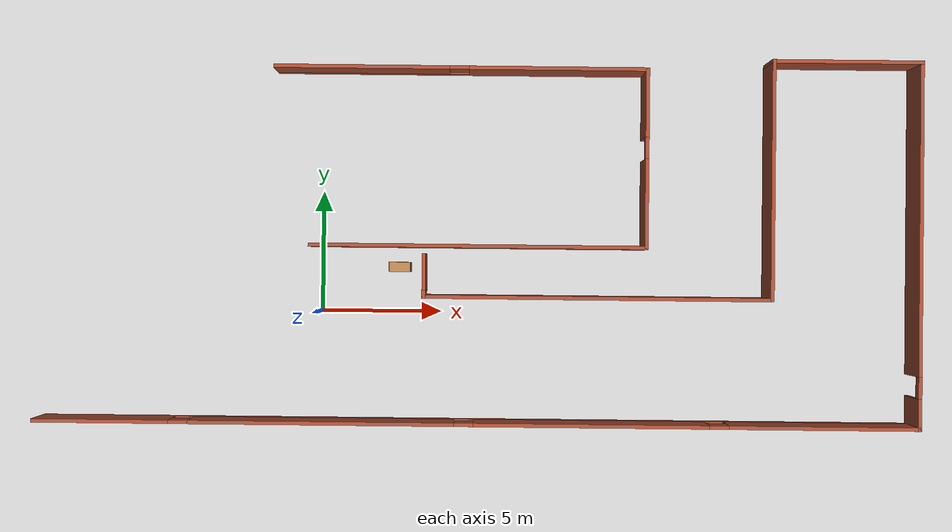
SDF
<sdf version="1.6">
 <world name="default">
  <model name="ground_plane">
   <static>1</static>
   <link name="link">
    <collision name="collision">
     <geometry><plane><normal>0 0 1</normal><size>100 100</size></plane></geometry>
     <surface><friction><ode><mu>100</mu><mu2>50</mu2></ode></friction></surface>
    </collision>
    <visual name="visual">
     <cast_shadows>0</cast_shadows>
     <geometry><plane><normal>0 0 1</normal><size>100 100</size></plane></geometry>
     <material>
      <script><uri>file://media/materials/scripts/gazebo.material</uri><name>Gazebo/Grey</name></script>
     </material>
    </visual>
   </link>
  </model>
  <model name="bookshelf">
   <static>1</static>
   <link name="link">
    <inertial><mass>1</mass></inertial>
    <collision name="back">
     <pose>0 0.005 0.6 0 -0 0</pose>
     <geometry><box><size>0.9 0.01 1.2</size></box></geometry>
    </collision>
    <visual name="visual1">
     <pose>0 0.005 0.6 0 -0 0</pose>
     <geometry><box><size>0.9 0.01 1.2</size></box></geometry>
     <material>
      <script><uri>file://media/materials/scripts/gazebo.material</uri><name>Gazebo/Wood</name></script>
     </material>
    </visual>
    <collision name="left_side">
     <pose>0.45 -0.195 0.6 0 -0 0</pose>
     <geometry><box><size>0.02 0.4 1.2</size></box></geometry>
    </collision>
    <visual name="visual2">
     <pose>0.45 -0.195 0.6 0 -0 0</pose>
     <geometry><box><size>0.02 0.4 1.2</size></box></geometry>
     <material>
      <script><uri>file://media/materials/scripts/gazebo.material</uri><name>Gazebo/Wood</name></script>
     </material>
    </visual>
    <collision name="right_side">
     <pose>-0.45 -0.195 0.6 0 -0 0</pose>
     <geometry><box><size>0.02 0.4 1.2</size></box></geometry>
    </collision>
    <visual name="visual3">
     <pose>-0.45 -0.195 0.6 0 -0 0</pose>
     <geometry><box><size>0.02 0.4 1.2</size></box></geometry>
     <material>
      <script><uri>file://media/materials/scripts/gazebo.material</uri><name>Gazebo/Wood</name></script>
     </material>
    </visual>
    <collision name="bottom">
     <pose>0 -0.195 0.03 0 -0 0</pose>
     <geometry><box><size>0.88 0.4 0.06</size></box></geometry>
    </collision>
    <visual name="visual4">
     <pose>0 -0.195 0.03 0 -0 0</pose>
     <geometry><box><size>0.88 0.4 0.06</size></box></geometry>
     <material>
      <script><uri>file://media/materials/scripts/gazebo.material</uri><name>Gazebo/Wood</name></script>
     </material>
    </visual>
    <collision name="top">
     <pose>0 -0.195 1.19 0 -0 0</pose>
     <geometry><box><size>0.88 0.4 0.02</size></box></geometry>
    </collision>
    <visual name="visual5">
     <pose>0 -0.195 1.19 0 -0 0</pose>
     <geometry><box><size>0.88 0.4 0.02</size></box></geometry>
     <material>
      <script><uri>file://media/materials/scripts/gazebo.material</uri><name>Gazebo/Wood</name></script>
     </material>
    </visual>
    <collision name="low_shelf">
     <pose>0 -0.195 0.43 0 -0 0</pose>
     <geometry><box><size>0.88 0.4 0.02</size></box></geometry>
    </collision>
    <visual name="visual6">
     <pose>0 -0.195 0.43 0 -0 0</pose>
     <geometry><box><size>0.88 0.4 0.02</size></box></geometry>
     <material>
      <script><uri>file://media/materials/scripts/gazebo.material</uri><name>Gazebo/Wood</name></script>
     </material>
    </visual>
    <collision name="high_shelf">
     <pose>0 -0.195 0.8 0 -0 0</pose>
     <geometry><box><size>0.88 0.4 0.02</size></box></geometry>
    </collision>
    <visual name="visual7">
     <pose>0 -0.195 0.8 0 -0 0</pose>
     <geometry><box><size>0.88 0.4 0.02</size></box></geometry>
     <material>
      <script><uri>file://media/materials/scripts/gazebo.material</uri><name>Gazebo/Wood</name></script>
     </material>
    </visual>
   </link>
   <pose>3.27707 2.05989 0 0 -0 0</pose>
  </model>
  <model name="apartment_model">
   <link name="Wall_15">
    <pose>0 -0.2 0 0 -0 0</pose>
    <visual name="Wall_15_Visual">
     <pose>0 0 1.25 0 -0 0</pose>
     <geometry><box><size>14 0.15 2.5</size></box></geometry>
     <material>
      <script><uri>file://media/materials/scripts/gazebo.material</uri><name>Gazebo/Bricks</name></script>
      <ambient>1 1 1 1</ambient>
      <diffuse>1 1 1 1</diffuse>
      <specular>0.2 0.2 0.2 1</specular>
      <emissive>0 0 0 1</emissive>
     </material>
    </visual>
    <collision name="Wall_15_Collision">
     <pose>0 0 1.25 0 -0 0</pose>
     <geometry><box><size>14 0.15 2.5</size></box></geometry>
     <surface>
      <friction>
       <ode><mu>1</mu><mu2>1</mu2><fdir1>0 0 0</fdir1><slip1>0</slip1><slip2>0</slip2></ode>
       <torsional>
        <coefficient>1</coefficient>
        <patch_radius>0</patch_radius>
        <surface_radius>0</surface_radius>
        <use_patch_radius>1</use_patch_radius>
        <ode><slip>0</slip></ode>
       </torsional>
      </friction>
      <bounce><restitution_coefficient>0</restitution_coefficient><threshold>1e+06</threshold></bounce>
      <contact>
       <collide_without_contact>0</collide_without_contact>
       <collide_without_contact_bitmask>1</collide_without_contact_bitmask>
       <collide_bitmask>1</collide_bitmask>
       <ode>
        <soft_cfm>0</soft_cfm>
        <soft_erp>0.2</soft_erp>
        <kp>1e+13</kp>
        <kd>1</kd>
        <max_vel>0.01</max_vel>
        <min_depth>0</min_depth>
       </ode>
       <bullet>
        <split_impulse>1</split_impulse>
        <split_impulse_penetration_threshold>-0.01</split_impulse_penetration_threshold>
        <soft_cfm>0</soft_cfm>
        <soft_erp>0.2</soft_erp>
        <kp>1e+13</kp>
        <kd>1</kd>
       </bullet>
      </contact>
     </surface>
    </collision>
   </link>
   <link name="Wall_16">
    <pose>6.925 3.475 0 0 -0 1.5708</pose>
    <visual name="Wall_16_Visual_0">
     <pose>-1.87856 0 1.25 0 -0 0</pose>
     <geometry><box><size>3.74288 0.15 2.5</size></box></geometry>
     <material>
      <script><uri>file://media/materials/scripts/gazebo.material</uri><name>Gazebo/Bricks</name></script>
      <ambient>1 1 1 1</ambient>
      <diffuse>1 1 1 1</diffuse>
      <specular>0.2 0.2 0.2 1</specular>
      <emissive>0 0 0 1</emissive>
     </material>
    </visual>
    <visual name="Wall_16_Visual_1">
     <pose>2.32144 0 1.25 0 -0 0</pose>
     <geometry><box><size>2.85712 0.15 2.5</size></box></geometry>
     <material>
      <script><uri>file://media/materials/scripts/gazebo.material</uri><name>Gazebo/Bricks</name></script>
      <ambient>1 1 1 1</ambient>
      <diffuse>1 1 1 1</diffuse>
      <specular>0.2 0.2 0.2 1</specular>
      <emissive>0 0 0 1</emissive>
     </material>
    </visual>
    <visual name="Wall_16_Visual_2">
     <pose>0.442879 0 2.25 0 -0 0</pose>
     <geometry><box><size>0.9 0.15 0.5</size></box></geometry>
     <material>
      <script><uri>file://media/materials/scripts/gazebo.material</uri><name>Gazebo/Bricks</name></script>
      <ambient>1 1 1 1</ambient>
      <diffuse>1 1 1 1</diffuse>
      <specular>0.2 0.2 0.2 1</specular>
      <emissive>0 0 0 1</emissive>
     </material>
    </visual>
    <collision name="Wall_16_Collision_0">
     <pose>-1.87856 0 1.25 0 -0 0</pose>
     <geometry><box><size>3.74288 0.15 2.5</size></box></geometry>
     <surface>
      <friction>
       <ode><mu>1</mu><mu2>1</mu2><fdir1>0 0 0</fdir1><slip1>0</slip1><slip2>0</slip2></ode>
       <torsional>
        <coefficient>1</coefficient>
        <patch_radius>0</patch_radius>
        <surface_radius>0</surface_radius>
        <use_patch_radius>1</use_patch_radius>
        <ode><slip>0</slip></ode>
       </torsional>
      </friction>
      <bounce><restitution_coefficient>0</restitution_coefficient><threshold>1e+06</threshold></bounce>
      <contact>
       <collide_without_contact>0</collide_without_contact>
       <collide_without_contact_bitmask>1</collide_without_contact_bitmask>
       <collide_bitmask>1</collide_bitmask>
       <ode>
        <soft_cfm>0</soft_cfm>
        <soft_erp>0.2</soft_erp>
        <kp>1e+13</kp>
        <kd>1</kd>
        <max_vel>0.01</max_vel>
        <min_depth>0</min_depth>
       </ode>
       <bullet>
        <split_impulse>1</split_impulse>
        <split_impulse_penetration_threshold>-0.01</split_impulse_penetration_threshold>
        <soft_cfm>0</soft_cfm>
        <soft_erp>0.2</soft_erp>
        <kp>1e+13</kp>
        <kd>1</kd>
       </bullet>
      </contact>
     </surface>
    </collision>
    <collision name="Wall_16_Collision_1">
     <pose>2.32144 0 1.25 0 -0 0</pose>
     <geometry><box><size>2.85712 0.15 2.5</size></box></geometry>
     <surface>
      <friction>
       <ode><mu>1</mu><mu2>1</mu2><fdir1>0 0 0</fdir1><slip1>0</slip1><slip2>0</slip2></ode>
       <torsional>
        <coefficient>1</coefficient>
        <patch_radius>0</patch_radius>
        <surface_radius>0</surface_radius>
        <use_patch_radius>1</use_patch_radius>
        <ode><slip>0</slip></ode>
       </torsional>
      </friction>
      <bounce><restitution_coefficient>0</restitution_coefficient><threshold>1e+06</threshold></bounce>
      <contact>
       <collide_without_contact>0</collide_without_contact>
       <collide_without_contact_bitmask>1</collide_without_contact_bitmask>
       <collide_bitmask>1</collide_bitmask>
       <ode>
        <soft_cfm>0</soft_cfm>
        <soft_erp>0.2</soft_erp>
        <kp>1e+13</kp>
        <kd>1</kd>
        <max_vel>0.01</max_vel>
        <min_depth>0</min_depth>
       </ode>
       <bullet>
        <split_impulse>1</split_impulse>
        <split_impulse_penetration_threshold>-0.01</split_impulse_penetration_threshold>
        <soft_cfm>0</soft_cfm>
        <soft_erp>0.2</soft_erp>
        <kp>1e+13</kp>
        <kd>1</kd>
       </bullet>
      </contact>
     </surface>
    </collision>
    <collision name="Wall_16_Collision_2">
     <pose>0.442879 0 2.25 0 -0 0</pose>
     <geometry><box><size>0.9 0.15 0.5</size></box></geometry>
     <surface>
      <friction>
       <ode><mu>1</mu><mu2>1</mu2><fdir1>0 0 0</fdir1><slip1>0</slip1><slip2>0</slip2></ode>
       <torsional>
        <coefficient>1</coefficient>
        <patch_radius>0</patch_radius>
        <surface_radius>0</surface_radius>
        <use_patch_radius>1</use_patch_radius>
        <ode><slip>0</slip></ode>
       </torsional>
      </friction>
      <bounce><restitution_coefficient>0</restitution_coefficient><threshold>1e+06</threshold></bounce>
      <contact>
       <collide_without_contact>0</collide_without_contact>
       <collide_without_contact_bitmask>1</collide_without_contact_bitmask>
       <collide_bitmask>1</collide_bitmask>
       <ode>
        <soft_cfm>0</soft_cfm>
        <soft_erp>0.2</soft_erp>
        <kp>1e+13</kp>
        <kd>1</kd>
        <max_vel>0.01</max_vel>
        <min_depth>0</min_depth>
       </ode>
       <bullet>
        <split_impulse>1</split_impulse>
        <split_impulse_penetration_threshold>-0.01</split_impulse_penetration_threshold>
        <soft_cfm>0</soft_cfm>
        <soft_erp>0.2</soft_erp>
        <kp>1e+13</kp>
        <kd>1</kd>
       </bullet>
      </contact>
     </surface>
    </collision>
   </link>
   <link name="Wall_17">
    <pose>-0.75 7.15 0 0 -0 3.14159</pose>
    <visual name="Wall_17_Visual_0">
     <pose>-4.03161 0 1.25 0 -0 0</pose>
     <geometry><box><size>7.43678 0.15 2.5</size></box></geometry>
     <material>
      <script><uri>file://media/materials/scripts/gazebo.material</uri><name>Gazebo/Bricks</name></script>
      <ambient>1 1 1 1</ambient>
      <diffuse>1 1 1 1</diffuse>
      <specular>0.2 0.2 0.2 1</specular>
      <emissive>0 0 0 1</emissive>
     </material>
    </visual>
    <visual name="Wall_17_Visual_1">
     <pose>3.71839 0 0.25 0 -0 0</pose>
     <geometry><box><size>8.06322 0.15 0.5</size></box></geometry>
     <material>
      <script><uri>file://media/materials/scripts/gazebo.material</uri><name>Gazebo/Bricks</name></script>
      <ambient>1 1 1 1</ambient>
      <diffuse>1 1 1 1</diffuse>
      <specular>0.2 0.2 0.2 1</specular>
      <emissive>0 0 0 1</emissive>
     </material>
    </visual>
    <visual name="Wall_17_Visual_2">
     <pose>4.11839 0 1.5 0 -0 0</pose>
     <geometry><box><size>7.26322 0.15 2</size></box></geometry>
     <material>
      <script><uri>file://media/materials/scripts/gazebo.material</uri><name>Gazebo/Bricks</name></script>
      <ambient>1 1 1 1</ambient>
      <diffuse>1 1 1 1</diffuse>
      <specular>0.2 0.2 0.2 1</specular>
      <emissive>0 0 0 1</emissive>
     </material>
    </visual>
    <visual name="Wall_17_Visual_3">
     <pose>0.086778 0 1.9 0 -0 0</pose>
     <geometry><box><size>0.8 0.15 1.2</size></box></geometry>
     <material>
      <script><uri>file://media/materials/scripts/gazebo.material</uri><name>Gazebo/Bricks</name></script>
      <ambient>1 1 1 1</ambient>
      <diffuse>1 1 1 1</diffuse>
      <specular>0.2 0.2 0.2 1</specular>
      <emissive>0 0 0 1</emissive>
     </material>
    </visual>
    <collision name="Wall_17_Collision_0">
     <pose>-4.03161 0 1.25 0 -0 0</pose>
     <geometry><box><size>7.43678 0.15 2.5</size></box></geometry>
     <surface>
      <friction>
       <ode><mu>1</mu><mu2>1</mu2><fdir1>0 0 0</fdir1><slip1>0</slip1><slip2>0</slip2></ode>
       <torsional>
        <coefficient>1</coefficient>
        <patch_radius>0</patch_radius>
        <surface_radius>0</surface_radius>
        <use_patch_radius>1</use_patch_radius>
        <ode><slip>0</slip></ode>
       </torsional>
      </friction>
      <bounce><restitution_coefficient>0</restitution_coefficient><threshold>1e+06</threshold></bounce>
      <contact>
       <collide_without_contact>0</collide_without_contact>
       <collide_without_contact_bitmask>1</collide_without_contact_bitmask>
       <collide_bitmask>1</collide_bitmask>
       <ode>
        <soft_cfm>0</soft_cfm>
        <soft_erp>0.2</soft_erp>
        <kp>1e+13</kp>
        <kd>1</kd>
        <max_vel>0.01</max_vel>
        <min_depth>0</min_depth>
       </ode>
       <bullet>
        <split_impulse>1</split_impulse>
        <split_impulse_penetration_threshold>-0.01</split_impulse_penetration_threshold>
        <soft_cfm>0</soft_cfm>
        <soft_erp>0.2</soft_erp>
        <kp>1e+13</kp>
        <kd>1</kd>
       </bullet>
      </contact>
     </surface>
    </collision>
    <collision name="Wall_17_Collision_1">
     <pose>3.71839 0 0.25 0 -0 0</pose>
     <geometry><box><size>8.06322 0.15 0.5</size></box></geometry>
     <surface>
      <friction>
       <ode><mu>1</mu><mu2>1</mu2><fdir1>0 0 0</fdir1><slip1>0</slip1><slip2>0</slip2></ode>
       <torsional>
        <coefficient>1</coefficient>
        <patch_radius>0</patch_radius>
        <surface_radius>0</surface_radius>
        <use_patch_radius>1</use_patch_radius>
        <ode><slip>0</slip></ode>
       </torsional>
      </friction>
      <bounce><restitution_coefficient>0</restitution_coefficient><threshold>1e+06</threshold></bounce>
      <contact>
       <collide_without_contact>0</collide_without_contact>
       <collide_without_contact_bitmask>1</collide_without_contact_bitmask>
       <collide_bitmask>1</collide_bitmask>
       <ode>
        <soft_cfm>0</soft_cfm>
        <soft_erp>0.2</soft_erp>
        <kp>1e+13</kp>
        <kd>1</kd>
        <max_vel>0.01</max_vel>
        <min_depth>0</min_depth>
       </ode>
       <bullet>
        <split_impulse>1</split_impulse>
        <split_impulse_penetration_threshold>-0.01</split_impulse_penetration_threshold>
        <soft_cfm>0</soft_cfm>
        <soft_erp>0.2</soft_erp>
        <kp>1e+13</kp>
        <kd>1</kd>
       </bullet>
      </contact>
     </surface>
    </collision>
    <collision name="Wall_17_Collision_2">
     <pose>4.11839 0 1.5 0 -0 0</pose>
     <geometry><box><size>7.26322 0.15 2</size></box></geometry>
     <surface>
      <friction>
       <ode><mu>1</mu><mu2>1</mu2><fdir1>0 0 0</fdir1><slip1>0</slip1><slip2>0</slip2></ode>
       <torsional>
        <coefficient>1</coefficient>
        <patch_radius>0</patch_radius>
        <surface_radius>0</surface_radius>
        <use_patch_radius>1</use_patch_radius>
        <ode><slip>0</slip></ode>
       </torsional>
      </friction>
      <bounce><restitution_coefficient>0</restitution_coefficient><threshold>1e+06</threshold></bounce>
      <contact>
       <collide_without_contact>0</collide_without_contact>
       <collide_without_contact_bitmask>1</collide_without_contact_bitmask>
       <collide_bitmask>1</collide_bitmask>
       <ode>
        <soft_cfm>0</soft_cfm>
        <soft_erp>0.2</soft_erp>
        <kp>1e+13</kp>
        <kd>1</kd>
        <max_vel>0.01</max_vel>
        <min_depth>0</min_depth>
       </ode>
       <bullet>
        <split_impulse>1</split_impulse>
        <split_impulse_penetration_threshold>-0.01</split_impulse_penetration_threshold>
        <soft_cfm>0</soft_cfm>
        <soft_erp>0.2</soft_erp>
        <kp>1e+13</kp>
        <kd>1</kd>
       </bullet>
      </contact>
     </surface>
    </collision>
    <collision name="Wall_17_Collision_3">
     <pose>0.086778 0 1.9 0 -0 0</pose>
     <geometry><box><size>0.8 0.15 1.2</size></box></geometry>
     <surface>
      <friction>
       <ode><mu>1</mu><mu2>1</mu2><fdir1>0 0 0</fdir1><slip1>0</slip1><slip2>0</slip2></ode>
       <torsional>
        <coefficient>1</coefficient>
        <patch_radius>0</patch_radius>
        <surface_radius>0</surface_radius>
        <use_patch_radius>1</use_patch_radius>
        <ode><slip>0</slip></ode>
       </torsional>
      </friction>
      <bounce><restitution_coefficient>0</restitution_coefficient><threshold>1e+06</threshold></bounce>
      <contact>
       <collide_without_contact>0</collide_without_contact>
       <collide_without_contact_bitmask>1</collide_without_contact_bitmask>
       <collide_bitmask>1</collide_bitmask>
       <ode>
        <soft_cfm>0</soft_cfm>
        <soft_erp>0.2</soft_erp>
        <kp>1e+13</kp>
        <kd>1</kd>
        <max_vel>0.01</max_vel>
        <min_depth>0</min_depth>
       </ode>
       <bullet>
        <split_impulse>1</split_impulse>
        <split_impulse_penetration_threshold>-0.01</split_impulse_penetration_threshold>
        <soft_cfm>0</soft_cfm>
        <soft_erp>0.2</soft_erp>
        <kp>1e+13</kp>
        <kd>1</kd>
       </bullet>
      </contact>
     </surface>
    </collision>
   </link>
   <link name="Wall_21">
    <pose>18.225 0 0 0 -0 1.5708</pose>
    <visual name="Wall_21_Visual_0">
     <pose>-6.96408 0 1.25 0 -0 0</pose>
     <geometry><box><size>1.32185 0.15 2.5</size></box></geometry>
     <material>
      <script><uri>file://media/materials/scripts/gazebo.material</uri><name>Gazebo/Bricks</name></script>
      <ambient>1 1 1 1</ambient>
      <diffuse>1 1 1 1</diffuse>
      <specular>0.2 0.2 0.2 1</specular>
      <emissive>0 0 0 1</emissive>
     </material>
    </visual>
    <visual name="Wall_21_Visual_2">
     <pose>-5.85315 0 2.25 0 -0 0</pose>
     <geometry><box><size>0.9 0.15 0.5</size></box></geometry>
     <material>
      <script><uri>file://media/materials/scripts/gazebo.material</uri><name>Gazebo/Bricks</name></script>
      <ambient>1 1 1 1</ambient>
      <diffuse>1 1 1 1</diffuse>
      <specular>0.2 0.2 0.2 1</specular>
      <emissive>0 0 0 1</emissive>
     </material>
    </visual>
    <visual name="Wall_21_Visual_1">
     <pose>1.11092 0 1.25 0 -0 0</pose>
     <geometry><box><size>13.0282 0.15 2.5</size></box></geometry>
     <material>
      <script><uri>file://media/materials/scripts/gazebo.material</uri><name>Gazebo/Bricks</name></script>
      <ambient>1 1 1 1</ambient>
      <diffuse>1 1 1 1</diffuse>
      <specular>0.2 0.2 0.2 1</specular>
      <emissive>0 0 0 1</emissive>
     </material>
    </visual>
    <collision name="Wall_21_Collision_0">
     <pose>-6.96408 0 1.25 0 -0 0</pose>
     <geometry><box><size>1.32185 0.15 2.5</size></box></geometry>
     <surface>
      <friction>
       <ode><mu>1</mu><mu2>1</mu2><fdir1>0 0 0</fdir1><slip1>0</slip1><slip2>0</slip2></ode>
       <torsional>
        <coefficient>1</coefficient>
        <patch_radius>0</patch_radius>
        <surface_radius>0</surface_radius>
        <use_patch_radius>1</use_patch_radius>
        <ode><slip>0</slip></ode>
       </torsional>
      </friction>
      <bounce><restitution_coefficient>0</restitution_coefficient><threshold>1e+06</threshold></bounce>
      <contact>
       <collide_without_contact>0</collide_without_contact>
       <collide_without_contact_bitmask>1</collide_without_contact_bitmask>
       <collide_bitmask>1</collide_bitmask>
       <ode>
        <soft_cfm>0</soft_cfm>
        <soft_erp>0.2</soft_erp>
        <kp>1e+13</kp>
        <kd>1</kd>
        <max_vel>0.01</max_vel>
        <min_depth>0</min_depth>
       </ode>
       <bullet>
        <split_impulse>1</split_impulse>
        <split_impulse_penetration_threshold>-0.01</split_impulse_penetration_threshold>
        <soft_cfm>0</soft_cfm>
        <soft_erp>0.2</soft_erp>
        <kp>1e+13</kp>
        <kd>1</kd>
       </bullet>
      </contact>
     </surface>
    </collision>
    <collision name="Wall_21_Collision_1">
     <pose>1.11092 0 1.25 0 -0 0</pose>
     <geometry><box><size>13.0282 0.15 2.5</size></box></geometry>
     <surface>
      <friction>
       <ode><mu>1</mu><mu2>1</mu2><fdir1>0 0 0</fdir1><slip1>0</slip1><slip2>0</slip2></ode>
       <torsional>
        <coefficient>1</coefficient>
        <patch_radius>0</patch_radius>
        <surface_radius>0</surface_radius>
        <use_patch_radius>1</use_patch_radius>
        <ode><slip>0</slip></ode>
       </torsional>
      </friction>
      <bounce><restitution_coefficient>0</restitution_coefficient><threshold>1e+06</threshold></bounce>
      <contact>
       <collide_without_contact>0</collide_without_contact>
       <collide_without_contact_bitmask>1</collide_without_contact_bitmask>
       <collide_bitmask>1</collide_bitmask>
       <ode>
        <soft_cfm>0</soft_cfm>
        <soft_erp>0.2</soft_erp>
        <kp>1e+13</kp>
        <kd>1</kd>
        <max_vel>0.01</max_vel>
        <min_depth>0</min_depth>
       </ode>
       <bullet>
        <split_impulse>1</split_impulse>
        <split_impulse_penetration_threshold>-0.01</split_impulse_penetration_threshold>
        <soft_cfm>0</soft_cfm>
        <soft_erp>0.2</soft_erp>
        <kp>1e+13</kp>
        <kd>1</kd>
       </bullet>
      </contact>
     </surface>
    </collision>
    <collision name="Wall_21_Collision_2">
     <pose>-5.85315 0 2.25 0 -0 0</pose>
     <geometry><box><size>0.9 0.15 0.5</size></box></geometry>
     <surface>
      <friction>
       <ode><mu>1</mu><mu2>1</mu2><fdir1>0 0 0</fdir1><slip1>0</slip1><slip2>0</slip2></ode>
       <torsional>
        <coefficient>1</coefficient>
        <patch_radius>0</patch_radius>
        <surface_radius>0</surface_radius>
        <use_patch_radius>1</use_patch_radius>
        <ode><slip>0</slip></ode>
       </torsional>
      </friction>
      <bounce><restitution_coefficient>0</restitution_coefficient><threshold>1e+06</threshold></bounce>
      <contact>
       <collide_without_contact>0</collide_without_contact>
       <collide_without_contact_bitmask>1</collide_without_contact_bitmask>
       <collide_bitmask>1</collide_bitmask>
       <ode>
        <soft_cfm>0</soft_cfm>
        <soft_erp>0.2</soft_erp>
        <kp>1e+13</kp>
        <kd>1</kd>
        <max_vel>0.01</max_vel>
        <min_depth>0</min_depth>
       </ode>
       <bullet>
        <split_impulse>1</split_impulse>
        <split_impulse_penetration_threshold>-0.01</split_impulse_penetration_threshold>
        <soft_cfm>0</soft_cfm>
        <soft_erp>0.2</soft_erp>
        <kp>1e+13</kp>
        <kd>1</kd>
       </bullet>
      </contact>
     </surface>
    </collision>
   </link>
   <link name="Wall_22">
    <pose>15.175 7.55 0 0 -0 3.14159</pose>
    <visual name="Wall_22_Visual">
     <pose>0 0 1.25 0 -0 0</pose>
     <geometry><box><size>6.25 0.15 2.5</size></box></geometry>
     <material>
      <script><uri>file://media/materials/scripts/gazebo.material</uri><name>Gazebo/Bricks</name></script>
      <ambient>1 1 1 1</ambient>
      <diffuse>1 1 1 1</diffuse>
      <specular>0.2 0.2 0.2 1</specular>
      <emissive>0 0 0 1</emissive>
     </material>
    </visual>
    <collision name="Wall_22_Collision">
     <pose>0 0 1.25 0 -0 0</pose>
     <geometry><box><size>6.25 0.15 2.5</size></box></geometry>
     <surface>
      <friction>
       <ode><mu>1</mu><mu2>1</mu2><fdir1>0 0 0</fdir1><slip1>0</slip1><slip2>0</slip2></ode>
       <torsional>
        <coefficient>1</coefficient>
        <patch_radius>0</patch_radius>
        <surface_radius>0</surface_radius>
        <use_patch_radius>1</use_patch_radius>
        <ode><slip>0</slip></ode>
       </torsional>
      </friction>
      <bounce><restitution_coefficient>0</restitution_coefficient><threshold>1e+06</threshold></bounce>
      <contact>
       <collide_without_contact>0</collide_without_contact>
       <collide_without_contact_bitmask>1</collide_without_contact_bitmask>
       <collide_bitmask>1</collide_bitmask>
       <ode>
        <soft_cfm>0</soft_cfm>
        <soft_erp>0.2</soft_erp>
        <kp>1e+13</kp>
        <kd>1</kd>
        <max_vel>0.01</max_vel>
        <min_depth>0</min_depth>
       </ode>
       <bullet>
        <split_impulse>1</split_impulse>
        <split_impulse_penetration_threshold>-0.01</split_impulse_penetration_threshold>
        <soft_cfm>0</soft_cfm>
        <soft_erp>0.2</soft_erp>
        <kp>1e+13</kp>
        <kd>1</kd>
       </bullet>
      </contact>
     </surface>
    </collision>
   </link>
   <link name="Wall_25">
    <pose>12.125 2.625 0 0 0 -1.5708</pose>
    <visual name="Wall_25_Visual">
     <pose>0 0 1.25 0 -0 0</pose>
     <geometry><box><size>10 0.15 2.5</size></box></geometry>
     <material>
      <script><uri>file://media/materials/scripts/gazebo.material</uri><name>Gazebo/Bricks</name></script>
      <ambient>1 1 1 1</ambient>
      <diffuse>1 1 1 1</diffuse>
      <specular>0.2 0.2 0.2 1</specular>
      <emissive>0 0 0 1</emissive>
     </material>
    </visual>
    <collision name="Wall_25_Collision">
     <pose>0 0 1.25 0 -0 0</pose>
     <geometry><box><size>10 0.15 2.5</size></box></geometry>
     <surface>
      <friction>
       <ode><mu>1</mu><mu2>1</mu2><fdir1>0 0 0</fdir1><slip1>0</slip1><slip2>0</slip2></ode>
       <torsional>
        <coefficient>1</coefficient>
        <patch_radius>0</patch_radius>
        <surface_radius>0</surface_radius>
        <use_patch_radius>1</use_patch_radius>
        <ode><slip>0</slip></ode>
       </torsional>
      </friction>
      <bounce><restitution_coefficient>0</restitution_coefficient><threshold>1e+06</threshold></bounce>
      <contact>
       <collide_without_contact>0</collide_without_contact>
       <collide_without_contact_bitmask>1</collide_without_contact_bitmask>
       <collide_bitmask>1</collide_bitmask>
       <ode>
        <soft_cfm>0</soft_cfm>
        <soft_erp>0.2</soft_erp>
        <kp>1e+13</kp>
        <kd>1</kd>
        <max_vel>0.01</max_vel>
        <min_depth>0</min_depth>
       </ode>
       <bullet>
        <split_impulse>1</split_impulse>
        <split_impulse_penetration_threshold>-0.01</split_impulse_penetration_threshold>
        <soft_cfm>0</soft_cfm>
        <soft_erp>0.2</soft_erp>
        <kp>1e+13</kp>
        <kd>1</kd>
       </bullet>
      </contact>
     </surface>
    </collision>
   </link>
   <link name="Wall_26">
    <pose>4.95 -2.3 0 0 -0 3.14159</pose>
    <visual name="Wall_26_Visual">
     <pose>0 0 1.25 0 -0 0</pose>
     <geometry><box><size>14.5 0.15 2.5</size></box></geometry>
     <material>
      <script><uri>file://media/materials/scripts/gazebo.material</uri><name>Gazebo/Bricks</name></script>
      <ambient>1 1 1 1</ambient>
      <diffuse>1 1 1 1</diffuse>
      <specular>0.2 0.2 0.2 1</specular>
      <emissive>0 0 0 1</emissive>
     </material>
    </visual>
    <collision name="Wall_26_Collision">
     <pose>0 0 1.25 0 -0 0</pose>
     <geometry><box><size>14.5 0.15 2.5</size></box></geometry>
     <surface>
      <friction>
       <ode><mu>1</mu><mu2>1</mu2><fdir1>0 0 0</fdir1><slip1>0</slip1><slip2>0</slip2></ode>
       <torsional>
        <coefficient>1</coefficient>
        <patch_radius>0</patch_radius>
        <surface_radius>0</surface_radius>
        <use_patch_radius>1</use_patch_radius>
        <ode><slip>0</slip></ode>
       </torsional>
      </friction>
      <bounce><restitution_coefficient>0</restitution_coefficient><threshold>1e+06</threshold></bounce>
      <contact>
       <collide_without_contact>0</collide_without_contact>
       <collide_without_contact_bitmask>1</collide_without_contact_bitmask>
       <collide_bitmask>1</collide_bitmask>
       <ode>
        <soft_cfm>0</soft_cfm>
        <soft_erp>0.2</soft_erp>
        <kp>1e+13</kp>
        <kd>1</kd>
        <max_vel>0.01</max_vel>
        <min_depth>0</min_depth>
       </ode>
       <bullet>
        <split_impulse>1</split_impulse>
        <split_impulse_penetration_threshold>-0.01</split_impulse_penetration_threshold>
        <soft_cfm>0</soft_cfm>
        <soft_erp>0.2</soft_erp>
        <kp>1e+13</kp>
        <kd>1</kd>
       </bullet>
      </contact>
     </surface>
    </collision>
   </link>
   <link name="Wall_27">
    <pose>-2.225 -2.125 0 0 -0 1.5708</pose>
    <visual name="Wall_27_Visual">
     <pose>0 0 1.25 0 -0 0</pose>
     <geometry><box><size>0.5 0.15 2.5</size></box></geometry>
     <material>
      <script><uri>file://media/materials/scripts/gazebo.material</uri><name>Gazebo/Bricks</name></script>
      <ambient>1 1 1 1</ambient>
      <diffuse>1 1 1 1</diffuse>
      <specular>0.2 0.2 0.2 1</specular>
      <emissive>0 0 0 1</emissive>
     </material>
    </visual>
    <collision name="Wall_27_Collision">
     <pose>0 0 1.25 0 -0 0</pose>
     <geometry><box><size>0.5 0.15 2.5</size></box></geometry>
     <surface>
      <friction>
       <ode><mu>1</mu><mu2>1</mu2><fdir1>0 0 0</fdir1><slip1>0</slip1><slip2>0</slip2></ode>
       <torsional>
        <coefficient>1</coefficient>
        <patch_radius>0</patch_radius>
        <surface_radius>0</surface_radius>
        <use_patch_radius>1</use_patch_radius>
        <ode><slip>0</slip></ode>
       </torsional>
      </friction>
      <bounce><restitution_coefficient>0</restitution_coefficient><threshold>1e+06</threshold></bounce>
      <contact>
       <collide_without_contact>0</collide_without_contact>
       <collide_without_contact_bitmask>1</collide_without_contact_bitmask>
       <collide_bitmask>1</collide_bitmask>
       <ode>
        <soft_cfm>0</soft_cfm>
        <soft_erp>0.2</soft_erp>
        <kp>1e+13</kp>
        <kd>1</kd>
        <max_vel>0.01</max_vel>
        <min_depth>0</min_depth>
       </ode>
       <bullet>
        <split_impulse>1</split_impulse>
        <split_impulse_penetration_threshold>-0.01</split_impulse_penetration_threshold>
        <soft_cfm>0</soft_cfm>
        <soft_erp>0.2</soft_erp>
        <kp>1e+13</kp>
        <kd>1</kd>
       </bullet>
      </contact>
     </surface>
    </collision>
   </link>
   <link name="Wall_29">
    <pose>0 -7.55 0 0 -0 0</pose>
    <visual name="Wall_29_Visual_0">
     <pose>-15.4905 0 1.25 0 -0 0</pose>
     <geometry><box><size>5.61904 0.15 2.5</size></box></geometry>
     <material>
      <script><uri>file://media/materials/scripts/gazebo.material</uri><name>Gazebo/Bricks</name></script>
      <ambient>1 1 1 1</ambient>
      <diffuse>1 1 1 1</diffuse>
      <specular>0.2 0.2 0.2 1</specular>
      <emissive>0 0 0 1</emissive>
     </material>
    </visual>
    <visual name="Wall_29_Visual_1">
     <pose>2.80952 0 0.25 0 -0 0</pose>
     <geometry><box><size>30.981 0.15 0.5</size></box></geometry>
     <material>
      <script><uri>file://media/materials/scripts/gazebo.material</uri><name>Gazebo/Bricks</name></script>
      <ambient>1 1 1 1</ambient>
      <diffuse>1 1 1 1</diffuse>
      <specular>0.2 0.2 0.2 1</specular>
      <emissive>0 0 0 1</emissive>
     </material>
    </visual>
    <visual name="Wall_29_Visual_3">
     <pose>4.73149 0 1.5 0 -0 0</pose>
     <geometry><box><size>9.72127 0.15 2</size></box></geometry>
     <material>
      <script><uri>file://media/materials/scripts/gazebo.material</uri><name>Gazebo/Bricks</name></script>
      <ambient>1 1 1 1</ambient>
      <diffuse>1 1 1 1</diffuse>
      <specular>0.2 0.2 0.2 1</specular>
      <emissive>0 0 0 1</emissive>
     </material>
    </visual>
    <visual name="Wall_29_Visual_2">
     <pose>-6.40505 0 1.5 0 -0 0</pose>
     <geometry><box><size>10.9518 0.15 2</size></box></geometry>
     <material>
      <script><uri>file://media/materials/scripts/gazebo.material</uri><name>Gazebo/Bricks</name></script>
      <ambient>1 1 1 1</ambient>
      <diffuse>1 1 1 1</diffuse>
      <specular>0.2 0.2 0.2 1</specular>
      <emissive>0 0 0 1</emissive>
     </material>
    </visual>
    <visual name="Wall_29_Visual_4">
     <pose>14.3461 0 1.5 0 -0 0</pose>
     <geometry><box><size>7.90787 0.15 2</size></box></geometry>
     <material>
      <script><uri>file://media/materials/scripts/gazebo.material</uri><name>Gazebo/Bricks</name></script>
      <ambient>1 1 1 1</ambient>
      <diffuse>1 1 1 1</diffuse>
      <specular>0.2 0.2 0.2 1</specular>
      <emissive>0 0 0 1</emissive>
     </material>
    </visual>
    <visual name="Wall_29_Visual_5">
     <pose>-12.281 0 1.9 0 -0 0</pose>
     <geometry><box><size>0.8 0.15 1.2</size></box></geometry>
     <material>
      <script><uri>file://media/materials/scripts/gazebo.material</uri><name>Gazebo/Bricks</name></script>
      <ambient>1 1 1 1</ambient>
      <diffuse>1 1 1 1</diffuse>
      <specular>0.2 0.2 0.2 1</specular>
      <emissive>0 0 0 1</emissive>
     </material>
    </visual>
    <visual name="Wall_29_Visual_6">
     <pose>-0.529139 0 1.9 0 -0 0</pose>
     <geometry><box><size>0.8 0.15 1.2</size></box></geometry>
     <material>
      <script><uri>file://media/materials/scripts/gazebo.material</uri><name>Gazebo/Bricks</name></script>
      <ambient>1 1 1 1</ambient>
      <diffuse>1 1 1 1</diffuse>
      <specular>0.2 0.2 0.2 1</specular>
      <emissive>0 0 0 1</emissive>
     </material>
    </visual>
    <visual name="Wall_29_Visual_7">
     <pose>9.99213 0 1.9 0 -0 0</pose>
     <geometry><box><size>0.8 0.15 1.2</size></box></geometry>
     <material>
      <script><uri>file://media/materials/scripts/gazebo.material</uri><name>Gazebo/Bricks</name></script>
      <ambient>1 1 1 1</ambient>
      <diffuse>1 1 1 1</diffuse>
      <specular>0.2 0.2 0.2 1</specular>
      <emissive>0 0 0 1</emissive>
     </material>
    </visual>
    <collision name="Wall_29_Collision_0">
     <pose>-15.4905 0 1.25 0 -0 0</pose>
     <geometry><box><size>5.61904 0.15 2.5</size></box></geometry>
     <surface>
      <friction>
       <ode><mu>1</mu><mu2>1</mu2><fdir1>0 0 0</fdir1><slip1>0</slip1><slip2>0</slip2></ode>
       <torsional>
        <coefficient>1</coefficient>
        <patch_radius>0</patch_radius>
        <surface_radius>0</surface_radius>
        <use_patch_radius>1</use_patch_radius>
        <ode><slip>0</slip></ode>
       </torsional>
      </friction>
      <bounce><restitution_coefficient>0</restitution_coefficient><threshold>1e+06</threshold></bounce>
      <contact>
       <collide_without_contact>0</collide_without_contact>
       <collide_without_contact_bitmask>1</collide_without_contact_bitmask>
       <collide_bitmask>1</collide_bitmask>
       <ode>
        <soft_cfm>0</soft_cfm>
        <soft_erp>0.2</soft_erp>
        <kp>1e+13</kp>
        <kd>1</kd>
        <max_vel>0.01</max_vel>
        <min_depth>0</min_depth>
       </ode>
       <bullet>
        <split_impulse>1</split_impulse>
        <split_impulse_penetration_threshold>-0.01</split_impulse_penetration_threshold>
        <soft_cfm>0</soft_cfm>
        <soft_erp>0.2</soft_erp>
        <kp>1e+13</kp>
        <kd>1</kd>
       </bullet>
      </contact>
     </surface>
    </collision>
    <collision name="Wall_29_Collision_1">
     <pose>2.80952 0 0.25 0 -0 0</pose>
     <geometry><box><size>30.981 0.15 0.5</size></box></geometry>
     <surface>
      <friction>
       <ode><mu>1</mu><mu2>1</mu2><fdir1>0 0 0</fdir1><slip1>0</slip1><slip2>0</slip2></ode>
       <torsional>
        <coefficient>1</coefficient>
        <patch_radius>0</patch_radius>
        <surface_radius>0</surface_radius>
        <use_patch_radius>1</use_patch_radius>
        <ode><slip>0</slip></ode>
       </torsional>
      </friction>
      <bounce><restitution_coefficient>0</restitution_coefficient><threshold>1e+06</threshold></bounce>
      <contact>
       <collide_without_contact>0</collide_without_contact>
       <collide_without_contact_bitmask>1</collide_without_contact_bitmask>
       <collide_bitmask>1</collide_bitmask>
       <ode>
        <soft_cfm>0</soft_cfm>
        <soft_erp>0.2</soft_erp>
        <kp>1e+13</kp>
        <kd>1</kd>
        <max_vel>0.01</max_vel>
        <min_depth>0</min_depth>
       </ode>
       <bullet>
        <split_impulse>1</split_impulse>
        <split_impulse_penetration_threshold>-0.01</split_impulse_penetration_threshold>
        <soft_cfm>0</soft_cfm>
        <soft_erp>0.2</soft_erp>
        <kp>1e+13</kp>
        <kd>1</kd>
       </bullet>
      </contact>
     </surface>
    </collision>
    <collision name="Wall_29_Collision_2">
     <pose>-6.40505 0 1.5 0 -0 0</pose>
     <geometry><box><size>10.9518 0.15 2</size></box></geometry>
     <surface>
      <friction>
       <ode><mu>1</mu><mu2>1</mu2><fdir1>0 0 0</fdir1><slip1>0</slip1><slip2>0</slip2></ode>
       <torsional>
        <coefficient>1</coefficient>
        <patch_radius>0</patch_radius>
        <surface_radius>0</surface_radius>
        <use_patch_radius>1</use_patch_radius>
        <ode><slip>0</slip></ode>
       </torsional>
      </friction>
      <bounce><restitution_coefficient>0</restitution_coefficient><threshold>1e+06</threshold></bounce>
      <contact>
       <collide_without_contact>0</collide_without_contact>
       <collide_without_contact_bitmask>1</collide_without_contact_bitmask>
       <collide_bitmask>1</collide_bitmask>
       <ode>
        <soft_cfm>0</soft_cfm>
        <soft_erp>0.2</soft_erp>
        <kp>1e+13</kp>
        <kd>1</kd>
        <max_vel>0.01</max_vel>
        <min_depth>0</min_depth>
       </ode>
       <bullet>
        <split_impulse>1</split_impulse>
        <split_impulse_penetration_threshold>-0.01</split_impulse_penetration_threshold>
        <soft_cfm>0</soft_cfm>
        <soft_erp>0.2</soft_erp>
        <kp>1e+13</kp>
        <kd>1</kd>
       </bullet>
      </contact>
     </surface>
    </collision>
    <collision name="Wall_29_Collision_4">
     <pose>14.3461 0 1.5 0 -0 0</pose>
     <geometry><box><size>7.90787 0.15 2</size></box></geometry>
     <surface>
      <friction>
       <ode><mu>1</mu><mu2>1</mu2><fdir1>0 0 0</fdir1><slip1>0</slip1><slip2>0</slip2></ode>
       <torsional>
        <coefficient>1</coefficient>
        <patch_radius>0</patch_radius>
        <surface_radius>0</surface_radius>
        <use_patch_radius>1</use_patch_radius>
        <ode><slip>0</slip></ode>
       </torsional>
      </friction>
      <bounce><restitution_coefficient>0</restitution_coefficient><threshold>1e+06</threshold></bounce>
      <contact>
       <collide_without_contact>0</collide_without_contact>
       <collide_without_contact_bitmask>1</collide_without_contact_bitmask>
       <collide_bitmask>1</collide_bitmask>
       <ode>
        <soft_cfm>0</soft_cfm>
        <soft_erp>0.2</soft_erp>
        <kp>1e+13</kp>
        <kd>1</kd>
        <max_vel>0.01</max_vel>
        <min_depth>0</min_depth>
       </ode>
       <bullet>
        <split_impulse>1</split_impulse>
        <split_impulse_penetration_threshold>-0.01</split_impulse_penetration_threshold>
        <soft_cfm>0</soft_cfm>
        <soft_erp>0.2</soft_erp>
        <kp>1e+13</kp>
        <kd>1</kd>
       </bullet>
      </contact>
     </surface>
    </collision>
    <collision name="Wall_29_Collision_3">
     <pose>4.73149 0 1.5 0 -0 0</pose>
     <geometry><box><size>9.72127 0.15 2</size></box></geometry>
     <surface>
      <friction>
       <ode><mu>1</mu><mu2>1</mu2><fdir1>0 0 0</fdir1><slip1>0</slip1><slip2>0</slip2></ode>
       <torsional>
        <coefficient>1</coefficient>
        <patch_radius>0</patch_radius>
        <surface_radius>0</surface_radius>
        <use_patch_radius>1</use_patch_radius>
        <ode><slip>0</slip></ode>
       </torsional>
      </friction>
      <bounce><restitution_coefficient>0</restitution_coefficient><threshold>1e+06</threshold></bounce>
      <contact>
       <collide_without_contact>0</collide_without_contact>
       <collide_without_contact_bitmask>1</collide_without_contact_bitmask>
       <collide_bitmask>1</collide_bitmask>
       <ode>
        <soft_cfm>0</soft_cfm>
        <soft_erp>0.2</soft_erp>
        <kp>1e+13</kp>
        <kd>1</kd>
        <max_vel>0.01</max_vel>
        <min_depth>0</min_depth>
       </ode>
       <bullet>
        <split_impulse>1</split_impulse>
        <split_impulse_penetration_threshold>-0.01</split_impulse_penetration_threshold>
        <soft_cfm>0</soft_cfm>
        <soft_erp>0.2</soft_erp>
        <kp>1e+13</kp>
        <kd>1</kd>
       </bullet>
      </contact>
     </surface>
    </collision>
    <collision name="Wall_29_Collision_5">
     <pose>-12.281 0 1.9 0 -0 0</pose>
     <geometry><box><size>0.8 0.15 1.2</size></box></geometry>
     <surface>
      <friction>
       <ode><mu>1</mu><mu2>1</mu2><fdir1>0 0 0</fdir1><slip1>0</slip1><slip2>0</slip2></ode>
       <torsional>
        <coefficient>1</coefficient>
        <patch_radius>0</patch_radius>
        <surface_radius>0</surface_radius>
        <use_patch_radius>1</use_patch_radius>
        <ode><slip>0</slip></ode>
       </torsional>
      </friction>
      <bounce><restitution_coefficient>0</restitution_coefficient><threshold>1e+06</threshold></bounce>
      <contact>
       <collide_without_contact>0</collide_without_contact>
       <collide_without_contact_bitmask>1</collide_without_contact_bitmask>
       <collide_bitmask>1</collide_bitmask>
       <ode>
        <soft_cfm>0</soft_cfm>
        <soft_erp>0.2</soft_erp>
        <kp>1e+13</kp>
        <kd>1</kd>
        <max_vel>0.01</max_vel>
        <min_depth>0</min_depth>
       </ode>
       <bullet>
        <split_impulse>1</split_impulse>
        <split_impulse_penetration_threshold>-0.01</split_impulse_penetration_threshold>
        <soft_cfm>0</soft_cfm>
        <soft_erp>0.2</soft_erp>
        <kp>1e+13</kp>
        <kd>1</kd>
       </bullet>
      </contact>
     </surface>
    </collision>
    <collision name="Wall_29_Collision_6">
     <pose>-0.529139 0 1.9 0 -0 0</pose>
     <geometry><box><size>0.8 0.15 1.2</size></box></geometry>
     <surface>
      <friction>
       <ode><mu>1</mu><mu2>1</mu2><fdir1>0 0 0</fdir1><slip1>0</slip1><slip2>0</slip2></ode>
       <torsional>
        <coefficient>1</coefficient>
        <patch_radius>0</patch_radius>
        <surface_radius>0</surface_radius>
        <use_patch_radius>1</use_patch_radius>
        <ode><slip>0</slip></ode>
       </torsional>
      </friction>
      <bounce><restitution_coefficient>0</restitution_coefficient><threshold>1e+06</threshold></bounce>
      <contact>
       <collide_without_contact>0</collide_without_contact>
       <collide_without_contact_bitmask>1</collide_without_contact_bitmask>
       <collide_bitmask>1</collide_bitmask>
       <ode>
        <soft_cfm>0</soft_cfm>
        <soft_erp>0.2</soft_erp>
        <kp>1e+13</kp>
        <kd>1</kd>
        <max_vel>0.01</max_vel>
        <min_depth>0</min_depth>
       </ode>
       <bullet>
        <split_impulse>1</split_impulse>
        <split_impulse_penetration_threshold>-0.01</split_impulse_penetration_threshold>
        <soft_cfm>0</soft_cfm>
        <soft_erp>0.2</soft_erp>
        <kp>1e+13</kp>
        <kd>1</kd>
       </bullet>
      </contact>
     </surface>
    </collision>
    <collision name="Wall_29_Collision_7">
     <pose>9.99213 0 1.9 0 -0 0</pose>
     <geometry><box><size>0.8 0.15 1.2</size></box></geometry>
     <surface>
      <friction>
       <ode><mu>1</mu><mu2>1</mu2><fdir1>0 0 0</fdir1><slip1>0</slip1><slip2>0</slip2></ode>
       <torsional>
        <coefficient>1</coefficient>
        <patch_radius>0</patch_radius>
        <surface_radius>0</surface_radius>
        <use_patch_radius>1</use_patch_radius>
        <ode><slip>0</slip></ode>
       </torsional>
      </friction>
      <bounce><restitution_coefficient>0</restitution_coefficient><threshold>1e+06</threshold></bounce>
      <contact>
       <collide_without_contact>0</collide_without_contact>
       <collide_without_contact_bitmask>1</collide_without_contact_bitmask>
       <collide_bitmask>1</collide_bitmask>
       <ode>
        <soft_cfm>0</soft_cfm>
        <soft_erp>0.2</soft_erp>
        <kp>1e+13</kp>
        <kd>1</kd>
        <max_vel>0.01</max_vel>
        <min_depth>0</min_depth>
       </ode>
       <bullet>
        <split_impulse>1</split_impulse>
        <split_impulse_penetration_threshold>-0.01</split_impulse_penetration_threshold>
        <soft_cfm>0</soft_cfm>
        <soft_erp>0.2</soft_erp>
        <kp>1e+13</kp>
        <kd>1</kd>
       </bullet>
      </contact>
     </surface>
    </collision>
   </link>
   <link name="Wall_7">
    <pose>-2.225 -1.275 0 0 -0 1.5708</pose>
    <visual name="Wall_7_Visual">
     <pose>0 0 1.25 0 -0 0</pose>
     <geometry><box><size>1.5 0.15 2.5</size></box></geometry>
     <material>
      <script><uri>file://media/materials/scripts/gazebo.material</uri><name>Gazebo/Bricks</name></script>
      <ambient>1 1 1 1</ambient>
      <diffuse>1 1 1 1</diffuse>
      <specular>0.2 0.2 0.2 1</specular>
      <emissive>0 0 0 1</emissive>
     </material>
    </visual>
    <collision name="Wall_7_Collision">
     <pose>0 0 1.25 0 -0 0</pose>
     <geometry><box><size>1.5 0.15 2.5</size></box></geometry>
     <surface>
      <friction>
       <ode><mu>1</mu><mu2>1</mu2><fdir1>0 0 0</fdir1><slip1>0</slip1><slip2>0</slip2></ode>
       <torsional>
        <coefficient>1</coefficient>
        <patch_radius>0</patch_radius>
        <surface_radius>0</surface_radius>
        <use_patch_radius>1</use_patch_radius>
        <ode><slip>0</slip></ode>
       </torsional>
      </friction>
      <bounce><restitution_coefficient>0</restitution_coefficient><threshold>1e+06</threshold></bounce>
      <contact>
       <collide_without_contact>0</collide_without_contact>
       <collide_without_contact_bitmask>1</collide_without_contact_bitmask>
       <collide_bitmask>1</collide_bitmask>
       <ode>
        <soft_cfm>0</soft_cfm>
        <soft_erp>0.2</soft_erp>
        <kp>1e+13</kp>
        <kd>1</kd>
        <max_vel>0.01</max_vel>
        <min_depth>0</min_depth>
       </ode>
       <bullet>
        <split_impulse>1</split_impulse>
        <split_impulse_penetration_threshold>-0.01</split_impulse_penetration_threshold>
        <soft_cfm>0</soft_cfm>
        <soft_erp>0.2</soft_erp>
        <kp>1e+13</kp>
        <kd>1</kd>
       </bullet>
      </contact>
     </surface>
    </collision>
   </link>
   <static>1</static>
   <pose>6.54088 2.94888 0 0 -0 0</pose>
  </model>
 </world>
</sdf>
